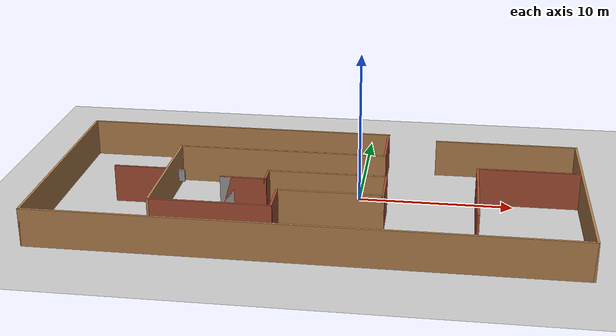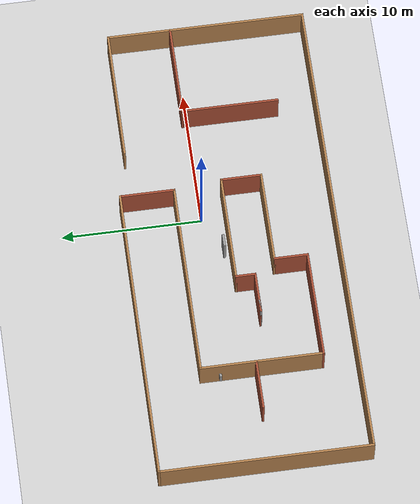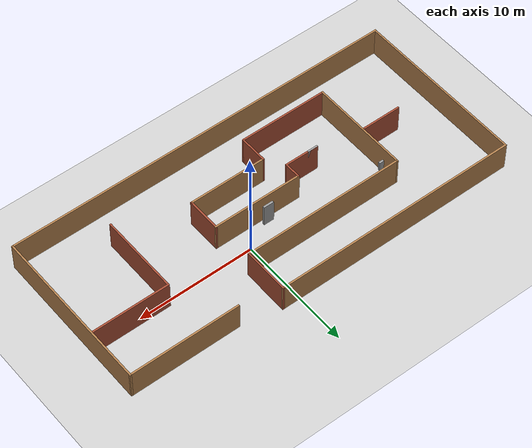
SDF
<sdf version="1.7">
 <world name="default">
  <light name="sun" type="directional">
   <pose>0 0 10 0 -0 0</pose>
   <diffuse>0.8 0.8 0.8 1</diffuse>
   <specular>0.2 0.2 0.2 1</specular>
   <attenuation>
    <range>1000</range>
    <constant>0.9</constant>
    <linear>0.01</linear>
    <quadratic>0.001</quadratic>
   </attenuation>
   <direction>-0.5 0.1 -0.9</direction>
   <spot><inner_angle>0</inner_angle><outer_angle>0</outer_angle><falloff>0</falloff></spot>
  </light>
  <model name="ground_plane">
   <static>1</static>
   <link name="link">
    <collision name="collision">
     <geometry><plane><normal>0 0 1</normal><size>100 100</size></plane></geometry>
     <surface>
      <contact><collide_bitmask>65535</collide_bitmask></contact>
      <friction><ode><mu>100</mu><mu2>50</mu2></ode></friction>
     </surface>
    </collision>
    <visual name="visual">
     <cast_shadows>0</cast_shadows>
     <geometry><plane><normal>0 0 1</normal><size>100 100</size></plane></geometry>
     <material>
      <script><uri>file://media/materials/scripts/gazebo.material</uri><name>Gazebo/Grey</name></script>
     </material>
    </visual>
   </link>
  </model>
  <gravity>0 0 -9.8</gravity>
  <magnetic_field>6e-06 2.3e-05 -4.2e-05</magnetic_field>
  <atmosphere type="adiabatic"/>
  <physics type="ode">
   <max_step_size>0.001</max_step_size>
   <real_time_factor>1</real_time_factor>
   <real_time_update_rate>1000</real_time_update_rate>
  </physics>
  <scene><ambient>0.4 0.4 0.4 1</ambient><background>0.7 0.7 0.7 1</background><shadows>1</shadows></scene>
  <spherical_coordinates>
   <surface_model>EARTH_WGS84</surface_model>
   <latitude_deg>0</latitude_deg>
   <longitude_deg>0</longitude_deg>
   <elevation>0</elevation>
   <heading_deg>0</heading_deg>
  </spherical_coordinates>
  <model name="slambot_world">
   <pose>-2.665 -1.835 0 0 -0 0</pose>
   <link name="Door_0">
    <collision name="Door_0_Collision">
     <geometry><box><size>0.9 0.17 2</size></box></geometry>
     <pose>0 0 1 0 -0 0</pose>
    </collision>
    <visual name="Door_0_Visual">
     <pose>0 0 1 0 -0 0</pose>
     <geometry><box><size>0.9 0.17 2</size></box></geometry>
     <material>
      <script><uri>file://media/materials/scripts/gazebo.material</uri><name>Gazebo/Grey</name></script>
     </material>
    </visual>
    <pose>0.0466 0.599855 0 0 -0 0</pose>
   </link>
   <link name="Wall_14">
    <collision name="Wall_14_Collision">
     <geometry><box><size>2.5 0.15 2.5</size></box></geometry>
     <pose>0 0 1.25 0 -0 0</pose>
    </collision>
    <visual name="Wall_14_Visual">
     <pose>0 0 1.25 0 -0 0</pose>
     <geometry><box><size>2.5 0.15 2.5</size></box></geometry>
     <material>
      <script><uri>file://media/materials/scripts/gazebo.material</uri><name>Gazebo/Bricks</name></script>
      <ambient>1 1 1 1</ambient>
     </material>
     <meta><layer>0</layer></meta>
    </visual>
    <pose>-2.075 -3.85 0 0 -0 -1.5708</pose>
   </link>
   <link name="Wall_15">
    <collision name="Wall_15_Collision">
     <geometry><box><size>7.75 0.15 2.5</size></box></geometry>
     <pose>0 0 1.25 0 -0 0</pose>
    </collision>
    <visual name="Wall_15_Visual">
     <pose>0 0 1.25 0 -0 0</pose>
     <geometry><box><size>7.75 0.15 2.5</size></box></geometry>
     <material>
      <script><uri>file://media/materials/scripts/gazebo.material</uri><name>Gazebo/Bricks</name></script>
      <ambient>1 1 1 1</ambient>
     </material>
     <meta><layer>0</layer></meta>
    </visual>
    <pose>-5.875 -5.025 0 0 -0 3.14159</pose>
   </link>
   <link name="Wall_16">
    <collision name="Wall_16_Collision">
     <geometry><box><size>8.75 0.15 2.5</size></box></geometry>
     <pose>0 0 1.25 0 -0 0</pose>
    </collision>
    <visual name="Wall_16_Visual">
     <pose>0 0 1.25 0 -0 0</pose>
     <geometry><box><size>8.75 0.15 2.5</size></box></geometry>
     <material>
      <script><uri>file://media/materials/scripts/gazebo.material</uri><name>Gazebo/Wood</name></script>
      <ambient>1 1 1 1</ambient>
     </material>
     <meta><layer>0</layer></meta>
    </visual>
    <pose>-9.675 -0.725 0 0 -0 1.5708</pose>
   </link>
   <link name="Wall_17">
    <collision name="Wall_17_Collision">
     <geometry><box><size>14 0.15 2.5</size></box></geometry>
     <pose>0 0 1.25 0 -0 0</pose>
    </collision>
    <visual name="Wall_17_Visual">
     <pose>0 0 1.25 0 -0 0</pose>
     <geometry><box><size>14 0.15 2.5</size></box></geometry>
     <material>
      <script><uri>file://media/materials/scripts/gazebo.material</uri><name>Gazebo/Wood</name></script>
      <ambient>1 1 1 1</ambient>
     </material>
     <meta><layer>0</layer></meta>
    </visual>
    <pose>-2.75 3.575 0 0 -0 0</pose>
   </link>
   <link name="Wall_19">
    <collision name="Wall_19_Collision">
     <geometry><box><size>4 0.15 2.5</size></box></geometry>
     <pose>0 0 1.25 0 -0 0</pose>
    </collision>
    <visual name="Wall_19_Visual">
     <pose>0 0 1.25 0 -0 0</pose>
     <geometry><box><size>4 0.15 2.5</size></box></geometry>
     <material>
      <script><uri>file://media/materials/scripts/gazebo.material</uri><name>Gazebo/Bricks</name></script>
      <ambient>1 1 1 1</ambient>
     </material>
     <meta><layer>0</layer></meta>
    </visual>
    <pose>4.175 5.5 0 0 -0 1.5708</pose>
   </link>
   <link name="Wall_20">
    <collision name="Wall_20_Collision">
     <geometry><box><size>21.25 0.15 2.5</size></box></geometry>
     <pose>0 0 1.25 0 -0 0</pose>
    </collision>
    <visual name="Wall_20_Visual">
     <pose>0 0 1.25 0 -0 0</pose>
     <geometry><box><size>21.25 0.15 2.5</size></box></geometry>
     <material>
      <script><uri>file://media/materials/scripts/gazebo.material</uri><name>Gazebo/Wood</name></script>
      <ambient>1 1 1 1</ambient>
     </material>
     <meta><layer>0</layer></meta>
    </visual>
    <pose>-6.375 7.425 0 0 -0 3.14159</pose>
   </link>
   <link name="Wall_21">
    <collision name="Wall_21_Collision">
     <geometry><box><size>15 0.15 2.5</size></box></geometry>
     <pose>0 0 1.25 0 -0 0</pose>
    </collision>
    <visual name="Wall_21_Visual">
     <pose>0 0 1.25 0 -0 0</pose>
     <geometry><box><size>15 0.15 2.5</size></box></geometry>
     <material>
      <script><uri>file://media/materials/scripts/gazebo.material</uri><name>Gazebo/Wood</name></script>
      <ambient>1 1 1 1</ambient>
     </material>
     <meta><layer>0</layer></meta>
    </visual>
    <pose>-16.925 0 0 0 -0 -1.5708</pose>
   </link>
   <link name="Wall_22">
    <collision name="Wall_22_Collision">
     <geometry><box><size>34 0.15 2.5</size></box></geometry>
     <pose>0 0 1.25 0 -0 0</pose>
    </collision>
    <visual name="Wall_22_Visual">
     <pose>0 0 1.25 0 -0 0</pose>
     <geometry><box><size>34 0.15 2.5</size></box></geometry>
     <material>
      <script><uri>file://media/materials/scripts/gazebo.material</uri><name>Gazebo/Wood</name></script>
      <ambient>1 1 1 1</ambient>
     </material>
     <meta><layer>0</layer></meta>
    </visual>
    <pose>0 -7.425 0 0 -0 0</pose>
   </link>
   <link name="Wall_23">
    <collision name="Wall_23_Collision">
     <geometry><box><size>14.25 0.15 2.5</size></box></geometry>
     <pose>0 0 1.25 0 -0 0</pose>
    </collision>
    <visual name="Wall_23_Visual">
     <pose>0 0 1.25 0 -0 0</pose>
     <geometry><box><size>14.25 0.15 2.5</size></box></geometry>
     <material>
      <script><uri>file://media/materials/scripts/gazebo.material</uri><name>Gazebo/Wood</name></script>
      <ambient>1 1 1 1</ambient>
     </material>
     <meta><layer>0</layer></meta>
    </visual>
    <pose>16.925 -0.375 0 0 -0 1.5708</pose>
   </link>
   <link name="Wall_25">
    <collision name="Wall_25_Collision">
     <geometry><box><size>6.75 0.15 2.5</size></box></geometry>
     <pose>0 0 1.25 0 -0 0</pose>
    </collision>
    <visual name="Wall_25_Visual">
     <pose>0 0 1.25 0 -0 0</pose>
     <geometry><box><size>6.75 0.15 2.5</size></box></geometry>
     <material>
      <script><uri>file://media/materials/scripts/gazebo.material</uri><name>Gazebo/Bricks</name></script>
      <ambient>1 1 1 1</ambient>
     </material>
     <meta><layer>0</layer></meta>
    </visual>
    <pose>13.6057 2.18369 0 0 -0 3.14159</pose>
   </link>
   <link name="Wall_26">
    <collision name="Wall_26_Collision">
     <geometry><box><size>7 0.15 2.5</size></box></geometry>
     <pose>0 0 1.25 0 -0 0</pose>
    </collision>
    <visual name="Wall_26_Visual">
     <pose>0 0 1.25 0 -0 0</pose>
     <geometry><box><size>7 0.15 2.5</size></box></geometry>
     <material>
      <script><uri>file://media/materials/scripts/gazebo.material</uri><name>Gazebo/Bricks</name></script>
      <ambient>1 1 1 1</ambient>
     </material>
     <meta><layer>0</layer></meta>
    </visual>
    <pose>10.3057 -1.24131 0 0 -0 -1.5708</pose>
   </link>
   <link name="Wall_28">
    <collision name="Wall_28_Collision">
     <geometry><box><size>9.5 0.15 2.5</size></box></geometry>
     <pose>0 0 1.25 0 -0 0</pose>
    </collision>
    <visual name="Wall_28_Visual">
     <pose>0 0 1.25 0 -0 0</pose>
     <geometry><box><size>9.5 0.15 2.5</size></box></geometry>
     <material>
      <script><uri>file://media/materials/scripts/gazebo.material</uri><name>Gazebo/Wood</name></script>
      <ambient>1 1 1 1</ambient>
     </material>
     <meta><layer>0</layer></meta>
    </visual>
    <pose>12.25 6.675 0 0 -0 3.14159</pose>
   </link>
   <link name="Wall_3">
    <collision name="Wall_3_Collision">
     <geometry><box><size>6.75 0.15 2.5</size></box></geometry>
     <pose>0 0 1.25 0 -0 0</pose>
    </collision>
    <visual name="Wall_3_Visual">
     <pose>0 0 1.25 0 -0 0</pose>
     <geometry><box><size>6.75 0.15 2.5</size></box></geometry>
     <material>
      <script><uri>file://media/materials/scripts/gazebo.material</uri><name>Gazebo/Wood</name></script>
      <ambient>1 1 1 1</ambient>
     </material>
     <meta><layer>0</layer></meta>
    </visual>
    <pose>1.225 -2.675 0 0 -0 0</pose>
   </link>
   <link name="Wall_30">
    <collision name="Wall_30_Collision">
     <geometry><box><size>3.5 0.15 2.5</size></box></geometry>
     <pose>0 0 1.25 0 -0 0</pose>
    </collision>
    <visual name="Wall_30_Visual">
     <pose>0 0 1.25 0 -0 0</pose>
     <geometry><box><size>3.5 0.15 2.5</size></box></geometry>
     <material>
      <script><uri>file://media/materials/scripts/gazebo.material</uri><name>Gazebo/Bricks</name></script>
      <ambient>1 1 1 1</ambient>
     </material>
     <meta><layer>0</layer></meta>
    </visual>
    <pose>-11.4348 -0.314 0 0 -0 3.14159</pose>
   </link>
   <link name="Wall_4">
    <collision name="Wall_4_Collision">
     <geometry><box><size>3 0.15 2.5</size></box></geometry>
     <pose>0 0 1.25 0 -0 0</pose>
    </collision>
    <visual name="Wall_4_Visual">
     <pose>0 0 1.25 0 -0 0</pose>
     <geometry><box><size>3 0.15 2.5</size></box></geometry>
     <material>
      <script><uri>file://media/materials/scripts/gazebo.material</uri><name>Gazebo/Bricks</name></script>
      <ambient>1 1 1 1</ambient>
     </material>
     <meta><layer>0</layer></meta>
    </visual>
    <pose>4.525 -1.25 0 0 -0 1.5708</pose>
   </link>
   <link name="Wall_5">
    <collision name="Wall_5_Collision">
     <geometry><box><size>7.75 0.15 2.5</size></box></geometry>
     <pose>0 0 1.25 0 -0 0</pose>
    </collision>
    <visual name="Wall_5_Visual">
     <pose>0 0 1.25 0 -0 0</pose>
     <geometry><box><size>7.75 0.15 2.5</size></box></geometry>
     <material>
      <script><uri>file://media/materials/scripts/gazebo.material</uri><name>Gazebo/Wood</name></script>
      <ambient>1 1 1 1</ambient>
     </material>
     <meta><layer>0</layer></meta>
    </visual>
    <pose>0.725 0.175 0 0 -0 3.14159</pose>
   </link>
   <link name="Wall_6">
    <collision name="Wall_6_Collision">
     <geometry><box><size>1.5 0.15 2.5</size></box></geometry>
     <pose>0 0 1.25 0 -0 0</pose>
    </collision>
    <visual name="Wall_6_Visual">
     <pose>0 0 1.25 0 -0 0</pose>
     <geometry><box><size>1.5 0.15 2.5</size></box></geometry>
     <material>
      <script><uri>file://media/materials/scripts/gazebo.material</uri><name>Gazebo/Bricks</name></script>
      <ambient>1 1 1 1</ambient>
     </material>
     <meta><layer>0</layer></meta>
    </visual>
    <pose>-3.075 -0.5 0 0 -0 -1.5708</pose>
   </link>
   <link name="Wall_7">
    <collision name="Wall_7_Collision">
     <geometry><box><size>3 0.15 2.5</size></box></geometry>
     <pose>0 0 1.25 0 -0 0</pose>
    </collision>
    <visual name="Wall_7_Visual">
     <pose>0 0 1.25 0 -0 0</pose>
     <geometry><box><size>3 0.15 2.5</size></box></geometry>
     <material>
      <script><uri>file://media/materials/scripts/gazebo.material</uri><name>Gazebo/Bricks</name></script>
      <ambient>1 1 1 1</ambient>
     </material>
     <meta><layer>0</layer></meta>
    </visual>
    <pose>-4.5 -1.175 0 0 -0 3.14159</pose>
   </link>
   <link name="Wall_8">
    <collision name="Wall_8_Collision">
     <geometry><box><size>0.91 0.15 2.5</size></box></geometry>
     <pose>0 0 1.25 0 -0 0</pose>
    </collision>
    <visual name="Wall_8_Visual">
     <pose>0 0 1.25 0 -0 0</pose>
     <geometry><box><size>0.91 0.15 2.5</size></box></geometry>
     <material>
      <script><uri>file://media/materials/scripts/gazebo.material</uri><name>Gazebo/Grey</name></script>
      <ambient>1 1 1 1</ambient>
     </material>
     <meta><layer>0</layer></meta>
    </visual>
    <pose>-5.545 -1.175 0 0 -0 0</pose>
   </link>
   <link name="Window_0">
    <collision name="Window_0_Collision">
     <geometry><box><size>0.8 0.17 0.8</size></box></geometry>
     <pose>0 0 0.4 0 -0 0</pose>
    </collision>
    <visual name="Window_0_Visual">
     <pose>0 0 0.4 0 -0 0</pose>
     <geometry><box><size>0.8 0.17 0.8</size></box></geometry>
     <material>
      <script><uri>file://media/materials/scripts/gazebo.material</uri><name>Gazebo/Grey</name></script>
     </material>
    </visual>
    <pose>-9.58267 2.19587 0.5 0 -0 0</pose>
   </link>
   <static>1</static>
  </model>
 </world>
</sdf>
